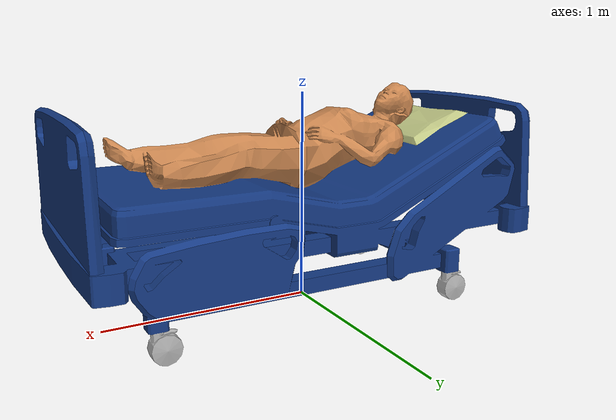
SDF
<?xml version='1.0'?>
<sdf version="1.4">
  <model name="women_patient">
    <pose>0 0 0 0 0 0</pose>
    <static>false</static>
    <link name="link">
      	<collision name="women_patient_collision">
        	<geometry>
            <mesh>
                <uri>model://women_patient/meshes/women_patient.dae</uri>
            </mesh>
        	</geometry>
      	</collision>
 		<visual name="women_patient_visual">
   			<geometry>
          <mesh>
              <uri>model://women_patient/meshes/women_patient.dae</uri>
          </mesh>
   			</geometry>
 		</visual>
    </link>
  </model>
</sdf>
